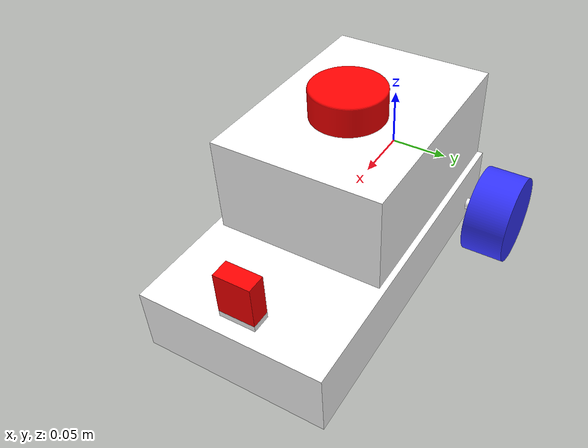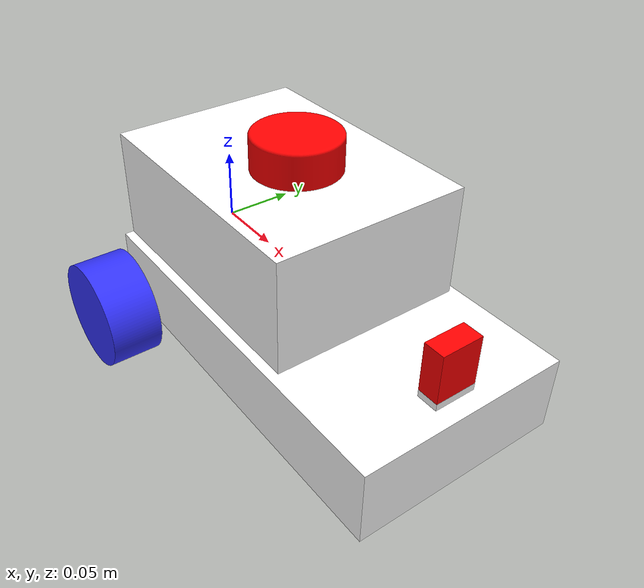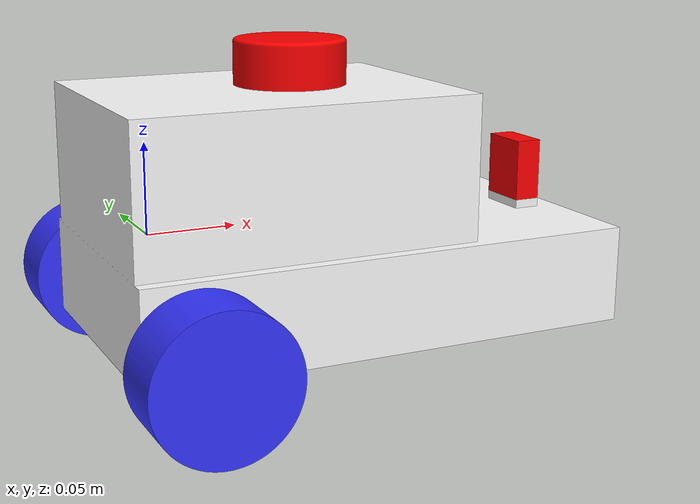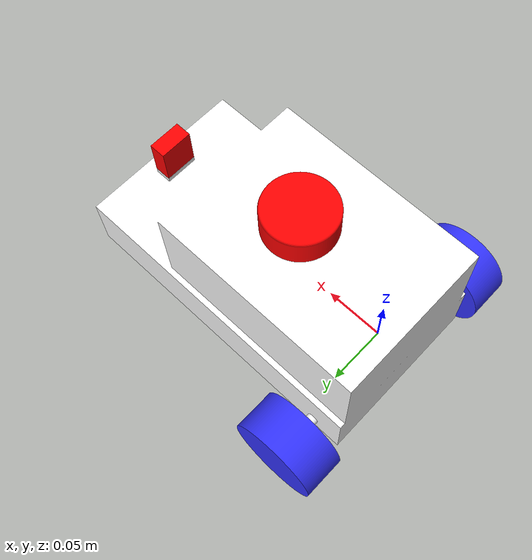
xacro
<?xml version="1.0"?>
<robot xmlns:xacro="http://www.ros.org/wiki/xacro"  name="robot">

    <xacro:arg name="use_ros2_control" default="true"/>
    <xacro:arg name="sim_mode" default="false"/>

    <xacro:include filename="robot_core.xacro" />

    <xacro:if value="$(arg use_ros2_control)" >
        <xacro:include filename="ros2_control.xacro"/>
    </xacro:if>

    <xacro:unless value="$(arg use_ros2_control)" >
        <xacro:include filename="gazebo_control.xacro"/>
    </xacro:unless>

    <xacro:include filename="lidar.xacro"/>

    <xacro:include filename="camera.xacro"/>

</robot>

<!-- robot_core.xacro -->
<robot xmlns:xacro="http://www.ros.org/wiki/xacro"  >

    <xacro:include filename="inertial_macros.xacro"/>
    <xacro:include filename="$(find ROS_rover_urdf_description)/urdf/materials.xacro" />
    <xacro:include filename="$(find ROS_rover_urdf_description)/urdf/ROS_rover_urdf.trans" />
    <xacro:include filename="$(find ROS_rover_urdf_description)/urdf/ROS_rover_urdf.gazebo" />

    <material name="white">
        <color rgba="1 1 1 1" />
    </material>

    <material name="orange">
        <color rgba="1 0.3 0.1 1" />
    </material>

    <material name="blue">
        <color rgba="0.2 0.2 1 1" />
    </material>

    <material name="black">
        <color rgba="0 0 0 1" />
    </material>

    <material name="red">
        <color rgba="1 0 0 1" />
    </material>

<!-- BASE LINK -->

    <link name="base_link">
      <origin xyz="0 0 0" rpy="0 0 0"/>
    </link>

    <!-- BASE_FOOTPRINT LINK -->

    <joint name="base_footprint_joint" type="fixed">
        <parent link="base_link"/>
        <child link="base_footprint"/>
        <origin xyz="0 0 0" rpy="0 0 0"/>
    </joint>

    <link name="base_footprint">
    </link>

<!-- CHASSIS LINK -->

    <joint name="chassis_joint" type="fixed">
        <parent link="base_link" />
        <child link="chassis" />
        <origin xyz="0.108526747687202506 -0.12224166560310168 -0.08643892236095495"/>
    </joint>

    <link name="chassis">
        <inertial>
            <origin xyz="-0.018526747687202506 0.12224166560310168 0.08643892236095495" rpy="0 0 0"/>
            <mass value="34.90606826800328"/>
            <inertia ixx="0.114886" iyy="0.239343" izz="0.249193" ixy="0.000401" iyz="-0.000589" ixz="0.025841"/>
          </inertial>
          <visual>
            <origin xyz="0 0 0" rpy="0 0 0"/>
            <geometry>
              <mesh filename="file://$(find ROS_rover_urdf_description)/meshes/base_link.stl" scale="0.001 0.001 0.001"/>
            </geometry>
            <material name="white"/>
          </visual>
          <collision>
            <origin xyz="0 0 0" rpy="0 0 0"/>
            <geometry>
              <mesh filename="file://$(find ROS_rover_urdf_description)/meshes/base_link.stl" scale="0.001 0.001 0.001"/>
            </geometry>
          </collision>
    </link>

    <gazebo reference="chassis">
        <material>Gazebo/White</material>
    </gazebo>

<!-- LEFT WHEEL LINK-->

    <joint name="left_wheel_joint" type="continuous">
        <parent link="chassis"/>
        <child link="left_wheel"/>
        <origin xyz="-0.109883 0.2086 0.041686" rpy="0 0 0"/>
        <axis xyz="0 1 0"/>
    </joint>

    <link name="left_wheel">
        <inertial>
            <origin xyz="4.24215932839922e-07 0.01849999999999999 8.092045233193401e-08" rpy="0 0 0"/>
            <mass value="1.3878753666636712"/>
            <inertia ixx="0.000686" iyy="0.001055" izz="0.000686" ixy="0.0" iyz="0.0" ixz="-0.0"/>
          </inertial>
          <visual>
            <origin xyz="0.109883 -0.2086 -0.041686" rpy="0 0 0"/>
            <geometry>
              <mesh filename="file://$(find ROS_rover_urdf_description)/meshes/Left_wheel_1.stl" scale="0.001 0.001 0.001"/>
            </geometry>
            <material name="blue"/>
          </visual>
          <collision>
            <origin xyz="0.109883 -0.2086 -0.041686" rpy="0 0 0"/>
            <geometry>
              <mesh filename="file://$(find ROS_rover_urdf_description)/meshes/Left_wheel_1.stl" scale="0.001 0.001 0.001"/>
            </geometry>
          </collision>
    </link>

    <gazebo reference="left_wheel">
        <material>Gazebo/Blue</material>
    </gazebo>

<!-- RIGHT WHEEL LINK-->

<joint name="right_wheel_joint" type="continuous">
    <origin xyz="-0.109883 0.037 0.041686" rpy="0 0 0"/>
    <parent link="chassis"/>
    <child link="right_wheel"/>
    <axis xyz="0.0 1.0 0.0"/>
</joint>

<link name="right_wheel">
    <inertial>
        <origin xyz="4.24215932839922e-07 -0.018500000000000003 8.09204523458118e-08" rpy="0 0 0"/>
        <mass value="1.3878753666636718"/>
        <inertia ixx="0.000686" iyy="0.001055" izz="0.000686" ixy="-0.0" iyz="0.0" ixz="-0.0"/>
      </inertial>
      <visual>
        <origin xyz="0.109883 -0.037 -0.041686" rpy="0 0 0"/>
        <geometry>
          <mesh filename="file://$(find ROS_rover_urdf_description)/meshes/Right_wheel_1.stl" scale="0.001 0.001 0.001"/>
        </geometry>
        <material name="blue"/>
      </visual>
      <collision>
        <origin xyz="0.109883 -0.037 -0.041686" rpy="0 0 0"/>
        <geometry>
          <mesh filename="file://$(find ROS_rover_urdf_description)/meshes/Right_wheel_1.stl" scale="0.001 0.001 0.001"/>
        </geometry>
      </collision>
</link>

<gazebo reference="right_wheel">
    <material>Gazebo/Blue</material>
</gazebo>

<!-- CASTER WHEEL LINK-->

<joint name="caster_wheel_joint" type="fixed">
    <parent link="chassis"/>
    <child link="castor_wheel"/>
    <origin xyz="0.05652 0.121748 0.027021" rpy="0 0 0"/>
    <axis xyz="0.0 0.0 -1.0"/>
</joint>

<link name="castor_wheel">
    <inertial>
        <origin xyz="2.7755575615628914e-17 -1.4670485243284404e-08 3.1211140116491065e-07" rpy="0 0 0"/>
        <mass value="0.4809809344697313"/>
        <inertia ixx="0.000115" iyy="0.000115" izz="0.000115" ixy="0.0" iyz="0.0" ixz="0.0"/>
      </inertial>
      <visual>
        <origin xyz="-0.05652 -0.121748 -0.027021" rpy="0 0 0"/>
        <geometry>
          <mesh filename="file://$(find ROS_rover_urdf_description)/meshes/_front_ball_1.stl" scale="0.001 0.001 0.001"/>
        </geometry>
        <material name="black"/>
      </visual>
      <collision>
        <origin xyz="-0.05652 -0.121748 -0.027021" rpy="0 0 0"/>
        <geometry>
          <mesh filename="file://$(find ROS_rover_urdf_description)/meshes/_front_ball_1.stl" scale="0.001 0.001 0.001"/>
        </geometry>
      </collision>
</link>

<gazebo reference="castor_wheel">
    <material>Gazebo/Black</material>
    <mu1 value="0.001"/>
    <mu2 value="0.001"/>
</gazebo>

</robot>

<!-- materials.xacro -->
<robot name="ROS_rover_urdf" xmlns:xacro="http://www.ros.org/wiki/xacro" >

<material name="silver">
  <color rgba="0.700 0.700 0.700 1.000"/>
</material>

</robot>

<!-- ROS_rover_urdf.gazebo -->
<robot name="ROS_rover_urdf" xmlns:xacro="http://www.ros.org/wiki/xacro" >

<xacro:property name="body_color" value="Gazebo/Silver" />

<gazebo>
  <plugin name="control" filename="libgazebo_ros_control.so"/>
</gazebo>
<gazebo reference="base_link">
  <material>${body_color}</material>
  <mu1>0.2</mu1>
  <mu2>0.2</mu2>
  <self_collide>true</self_collide>
  <gravity>true</gravity>
</gazebo>

<gazebo reference="Right_wheel_1">
  <material>${body_color}</material>
  <mu1>0.2</mu1>
  <mu2>0.2</mu2>
  <self_collide>true</self_collide>
</gazebo>

<gazebo reference="Left_wheel_1">
  <material>${body_color}</material>
  <mu1>0.2</mu1>
  <mu2>0.2</mu2>
  <self_collide>true</self_collide>
</gazebo>

<gazebo reference="_front_ball_1">
  <material>${body_color}</material>
  <mu1>0.2</mu1>
  <mu2>0.2</mu2>
  <self_collide>true</self_collide>
</gazebo>

<gazebo reference="Cam_1">
  <material>${body_color}</material>
  <mu1>0.2</mu1>
  <mu2>0.2</mu2>
  <self_collide>true</self_collide>
</gazebo>

<gazebo reference="Lidar_1">
  <material>${body_color}</material>
  <mu1>0.2</mu1>
  <mu2>0.2</mu2>
  <self_collide>true</self_collide>
</gazebo>

</robot>

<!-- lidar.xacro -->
<robot xmlns:xacro="http://www.ros.org/wiki/xacro"  >

    <joint name="laser_joint" type="fixed">
        <parent link="chassis"/>
        <child link="laser_frame"/>
        <origin xyz="-0.024813 0.122765 0.162152" rpy="0 0 0"/>
    </joint>

    <link name="laser_frame">
        <visual>
            <origin xyz="0.024813 -0.122765 -0.162152" rpy="0 0 0"/>
            <geometry>
                <mesh filename="file://$(find ROS_rover_urdf_description)/meshes/Lidar_1.stl" scale="0.001 0.001 0.001"/>
            </geometry>
            <material name="red"/>
        </visual>
        <collision>
            <origin xyz="0.024813 -0.122765 -0.162152" rpy="0 0 0"/>
            <geometry>
                <mesh filename="file://$(find ROS_rover_urdf_description)/meshes/Lidar_1.stl" scale="0.001 0.001 0.001"/>
            </geometry>
        </collision>
        <inertial>
            <origin xyz="8.458430520580373e-08 -2.3180009273149338e-07 0.012473784183963443" rpy="0 0 0"/>
            <mass value="0.5822410911588851"/>
            <inertia ixx="0.000168" iyy="0.000168" izz="0.000275" ixy="0.0" iyz="0.0" ixz="0.0"/>
        </inertial>
    </link>

    <gazebo reference="laser_frame">
        <material>Gazebo/Red</material>

        <sensor name="laser" type="ray">
            <pose> 0 0 0 0 0 0 </pose>
            <visualize>true</visualize>
            <update_rate>10</update_rate>
            <ray>
                <scan>
                    <horizontal>
                        <samples>360</samples>
                        <min_angle>-3.14</min_angle>
                        <max_angle>3.14</max_angle>
                    </horizontal>
                </scan>
                <range>
                    <min>0.3</min>
                    <max>12</max>
                </range>
            </ray>
            <plugin name="laser_controller" filename="libgazebo_ros_ray_sensor.so">
                <ros>
                    <argument>--ros-args --remap ~/out:=scan</argument>
                </ros>
                <output_type>sensor_msgs/LaserScan</output_type>
                <frame_name>laser_frame</frame_name>
            </plugin>
        </sensor>
    </gazebo>

</robot>

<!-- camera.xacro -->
<robot xmlns:xacro="http://www.ros.org/wiki/xacro"  >

    <joint name="camera_joint" type="fixed">
        <parent link="chassis"/>
        <child link="camera_link"/>
        <origin xyz="0.122495 0.122725 0.086129" rpy="0 0 0"/>
    </joint>

    <link name="camera_link">
        <visual>
            <origin xyz="-0.122495 -0.122725 -0.086129" rpy="0 0 0"/>
            <geometry>
                <mesh filename="file://$(find ROS_rover_urdf_description)/meshes/Cam_1.stl" scale="0.001 0.001 0.001"/>
            </geometry>
            <material name="red"/>
        </visual>
    </link>

    <joint name="camera_optical_joint" type="fixed">
        <parent link="camera_link"/>
        <child link="camera_link_optical"/>
        <origin xyz="0 0 0" rpy="${-pi/2} 0 ${-pi/2}"/>
    </joint>

    <link name="camera_link_optical"></link>

    <gazebo reference="camera_link">
        <material>Gazebo/Red</material>

        <sensor name="camera" type="camera">
            <pose> 0 0 0 0 0 0 </pose>
            <visualize>true</visualize>
            <update_rate>10</update_rate>
            <camera>
                <horizontal_fov>1.089</horizontal_fov>
                <image>
                    <format>R8G8B8</format>
                    <width>640</width>
                    <height>480</height>
                </image>
                <clip>
                    <near>0.05</near>
                    <far>8.0</far>
                </clip>
            </camera>
            <plugin name="camera_controller" filename="libgazebo_ros_camera.so">
                <frame_name>camera_link_optical</frame_name>
            </plugin>
        </sensor>
    </gazebo>

</robot>
